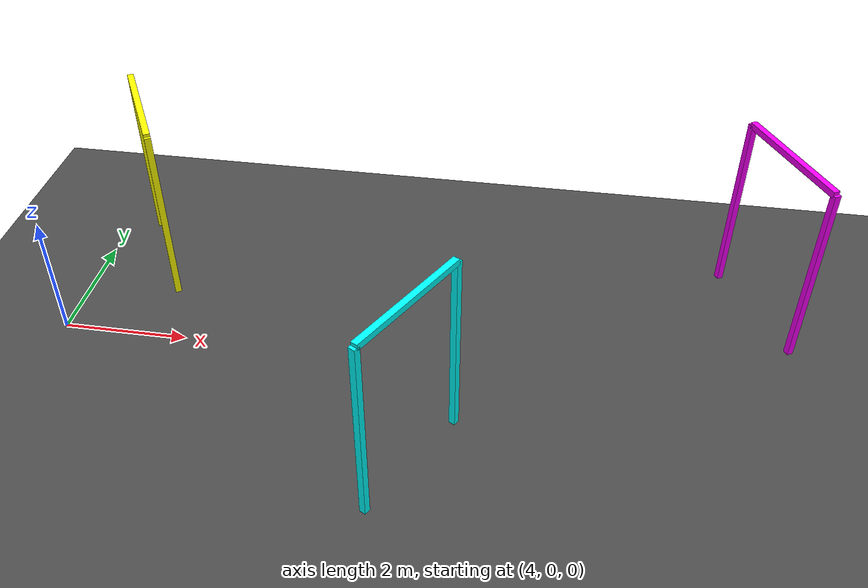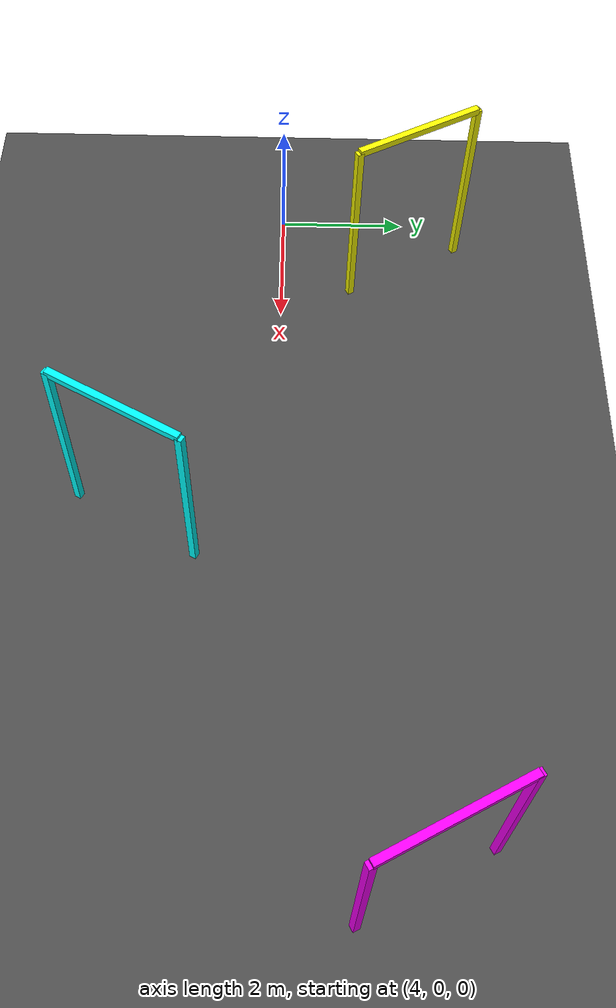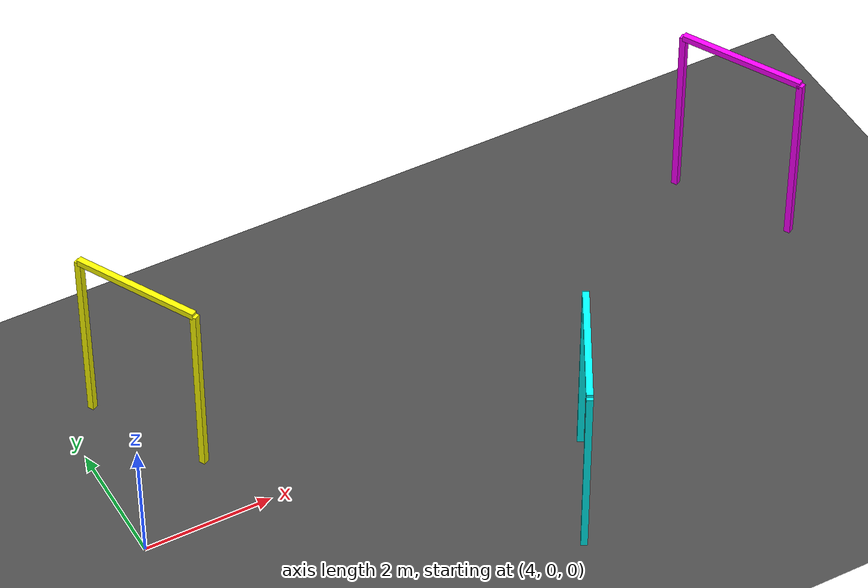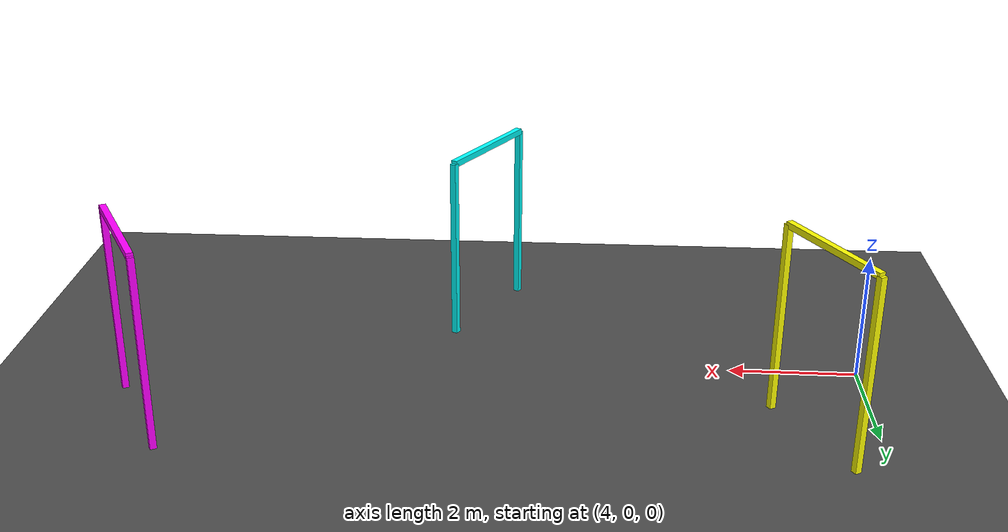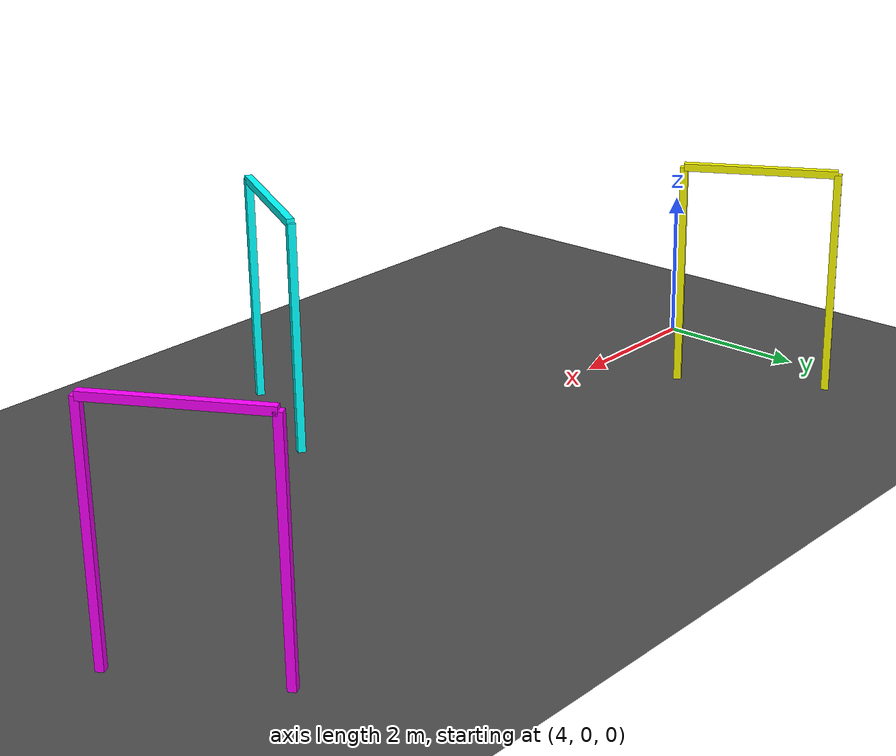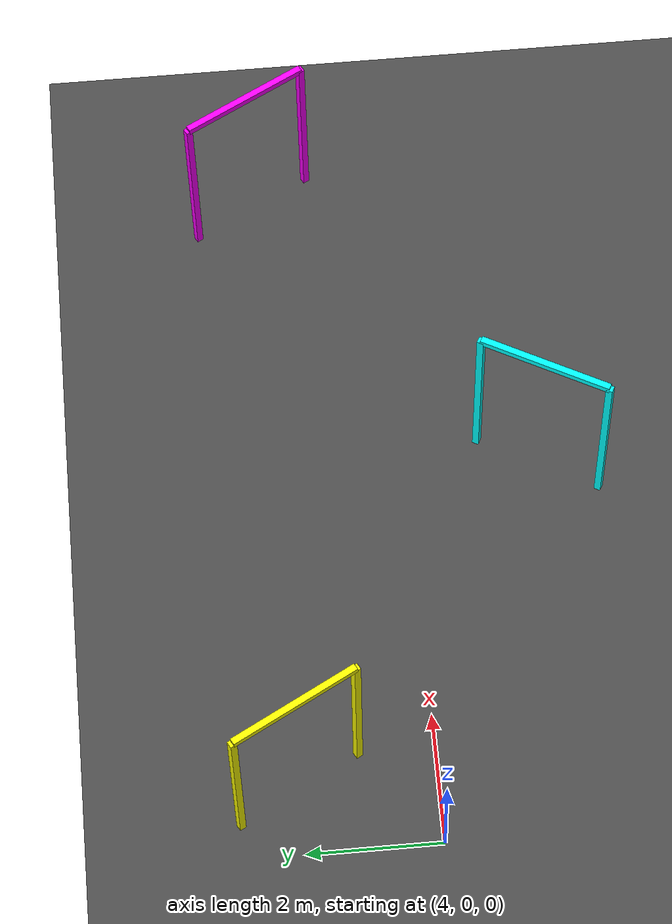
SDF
<sdf version="1.9">
 <world name="slalom_gates_65mm">
  <physics name="1ms" type="ignored">
   <max_step_size>0.001</max_step_size>
   <real_time_factor>1.0</real_time_factor>
  </physics>
  <plugin name="gz::sim::systems::Physics" filename="gz-sim-physics-system"/>
  <plugin name="gz::sim::systems::UserCommands" filename="gz-sim-user-commands-system"/>
  <plugin name="gz::sim::systems::SceneBroadcaster" filename="gz-sim-scene-broadcaster-system"/>
  <plugin name="gz::sim::systems::Sensors" filename="gz-sim-sensors-system">
   <render_engine>ogre2</render_engine>
  </plugin>
  <plugin name="gz::sim::systems::Imu" filename="gz-sim-imu-system"/>
  <light type="directional" name="sun">
   <pose>0 0 10 0 0 0</pose>
   <diffuse>0.8 0.8 0.8 1</diffuse>
   <specular>0.2 0.2 0.2 1</specular>
   <direction>-0.5 0.1 -0.9</direction>
  </light>
  <model name="ground_plane">
   <static>true</static>
   <link name="link">
    <collision name="collision">
     <geometry><plane><normal>0 0 1</normal><size>100 100</size></plane></geometry>
    </collision>
    <visual name="visual">
     <geometry><plane><normal>0 0 1</normal><size>100 100</size></plane></geometry>
     <material><ambient>0.3 0.3 0.3 1</ambient><diffuse>0.3 0.3 0.3 1</diffuse></material>
    </visual>
   </link>
  </model>
  <model name="gate_1">
   <static>true</static>
   <pose>5 2 1.5 0 0 0.5</pose>
   <link name="link">
    <visual name="v1">
     <pose>0 -1 0 0 0 0</pose>
     <geometry><box><size>0.1 0.1 3</size></box></geometry>
     <material><ambient>1 1 0 1</ambient></material>
    </visual>
    <visual name="v2">
     <pose>0 1 0 0 0 0</pose>
     <geometry><box><size>0.1 0.1 3</size></box></geometry>
     <material><ambient>1 1 0 1</ambient></material>
    </visual>
    <visual name="v3">
     <pose>0 0 1.5 0 0 0</pose>
     <geometry><box><size>0.1 2 0.1</size></box></geometry>
     <material><ambient>1 1 0 1</ambient></material>
    </visual>
    <collision name="c1">
     <pose>0 -1 0 0 0 0</pose>
     <geometry><box><size>0.1 0.1 3</size></box></geometry>
    </collision>
    <collision name="c2">
     <pose>0 1 0 0 0 0</pose>
     <geometry><box><size>0.1 0.1 3</size></box></geometry>
    </collision>
   </link>
  </model>
  <model name="gate_2">
   <static>true</static>
   <pose>10 -2 1.5 0 0 -0.5</pose>
   <link name="link">
    <visual name="v1">
     <pose>0 -1 0 0 0 0</pose>
     <geometry><box><size>0.1 0.1 3</size></box></geometry>
     <material><ambient>0 1 1 1</ambient></material>
    </visual>
    <visual name="v2">
     <pose>0 1 0 0 0 0</pose>
     <geometry><box><size>0.1 0.1 3</size></box></geometry>
     <material><ambient>0 1 1 1</ambient></material>
    </visual>
    <visual name="v3">
     <pose>0 0 1.5 0 0 0</pose>
     <geometry><box><size>0.1 2 0.1</size></box></geometry>
     <material><ambient>0 1 1 1</ambient></material>
    </visual>
    <collision name="c1">
     <pose>0 -1 0 0 0 0</pose>
     <geometry><box><size>0.1 0.1 3</size></box></geometry>
    </collision>
    <collision name="c2">
     <pose>0 1 0 0 0 0</pose>
     <geometry><box><size>0.1 0.1 3</size></box></geometry>
    </collision>
   </link>
  </model>
  <model name="gate_3">
   <static>true</static>
   <pose>15 2 1.5 0 0 0.5</pose>
   <link name="link">
    <visual name="v1">
     <pose>0 -1 0 0 0 0</pose>
     <geometry><box><size>0.1 0.1 3</size></box></geometry>
     <material><ambient>1 0 1 1</ambient></material>
    </visual>
    <visual name="v2">
     <pose>0 1 0 0 0 0</pose>
     <geometry><box><size>0.1 0.1 3</size></box></geometry>
     <material><ambient>1 0 1 1</ambient></material>
    </visual>
    <visual name="v3">
     <pose>0 0 1.5 0 0 0</pose>
     <geometry><box><size>0.1 2 0.1</size></box></geometry>
     <material><ambient>1 0 1 1</ambient></material>
    </visual>
    <collision name="c1">
     <pose>0 -1 0 0 0 0</pose>
     <geometry><box><size>0.1 0.1 3</size></box></geometry>
    </collision>
    <collision name="c2">
     <pose>0 1 0 0 0 0</pose>
     <geometry><box><size>0.1 0.1 3</size></box></geometry>
    </collision>
   </link>
  </model>
 </world>
</sdf>
